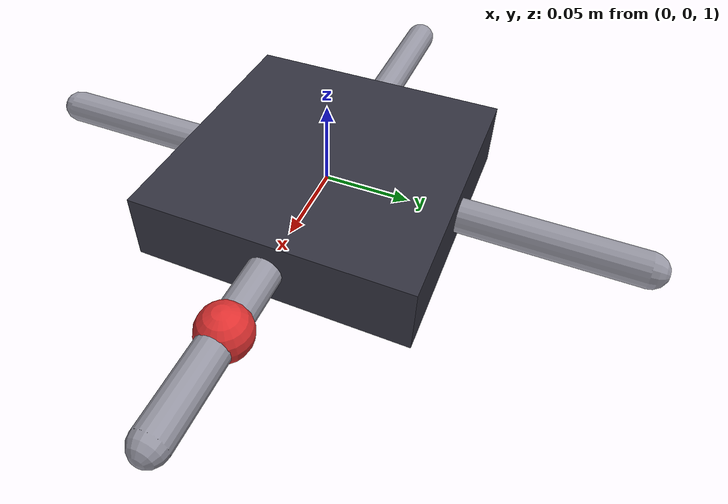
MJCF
<mujoco model="quad_4rotor">
  <option timestep="0.01" gravity="0 0 -9.81" integrator="RK4"/>
  <compiler angle="radian"/>

  <default>
    <geom friction="0.8 0.1 0.1" density="300" rgba="0.4 0.4 0.45 1"/>
  </default>

  <worldbody>
    <body name="quad" pos="0 0 1">
      <freejoint/>

      <!-- Main body mass/inertia -->
      <geom name="body" type="box" size="0.08 0.08 0.02" mass="1.0" rgba="0.2 0.2 0.25 1"/>

      <!-- Visual arms (massless) -->
      <geom name="arm_x" type="capsule" fromto="-0.18 0 0  0.18 0 0" size="0.01" mass="0" rgba="0.6 0.6 0.65 1"/>
      <geom name="arm_y" type="capsule" fromto="0 -0.18 0  0 0.18 0" size="0.01" mass="0" rgba="0.6 0.6 0.65 1"/>

      <!-- Rotor sites at arm ends (body-fixed frames). Forces applied here create roll/pitch torques via r × F. -->
      <site name="r1" pos=" 0.18  0.00 0.00" size="0.006" rgba="0 0 0 0"/>
      <site name="r2" pos="-0.18  0.00 0.00" size="0.006" rgba="0 0 0 0"/>
      <site name="r3" pos=" 0.00  0.18 0.00" size="0.006" rgba="0 0 0 0"/>
      <site name="r4" pos=" 0.00 -0.18 0.00" size="0.006" rgba="0 0 0 0"/>

      <!-- Nose marker -->
      <geom name="nose" type="sphere" pos="0.12 0 0" size="0.015" mass="0" rgba="0.9 0.2 0.2 1"/>
    </body>

    <geom name="floor" type="plane" pos="0 0 0" size="5 5 0.1" rgba="0.95 0.95 0.95 1"/>
  </worldbody>

  <actuator>

    <!-- Choose a small yaw coefficient (units: torque per Newton). This is a simple placeholder. -->
    <motor name="u1" site="r1" gear="0 0 1  0 0  0.02"/>
    <motor name="u2" site="r2" gear="0 0 1  0 0 -0.02"/>
    <motor name="u3" site="r3" gear="0 0 1  0 0  0.02"/>
    <motor name="u4" site="r4" gear="0 0 1  0 0 -0.02"/>
  </actuator>
</mujoco>
